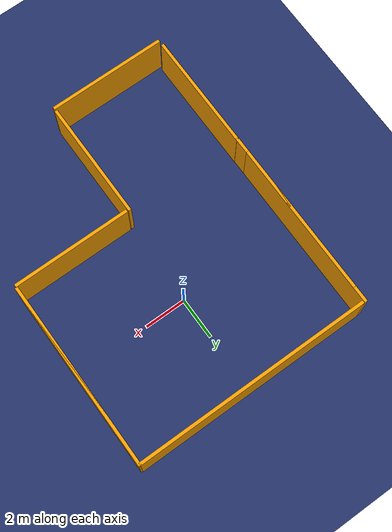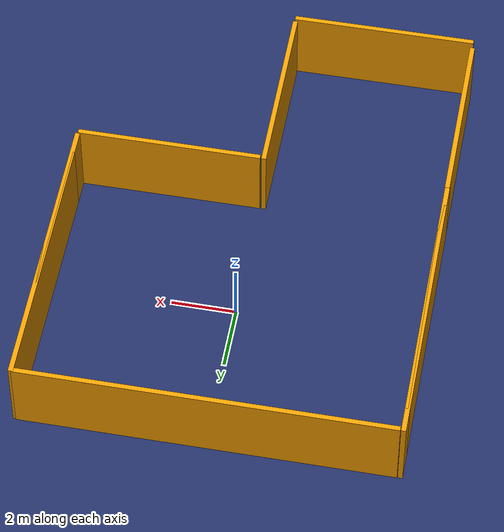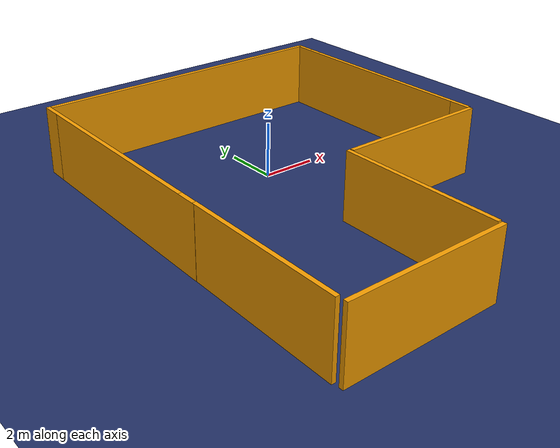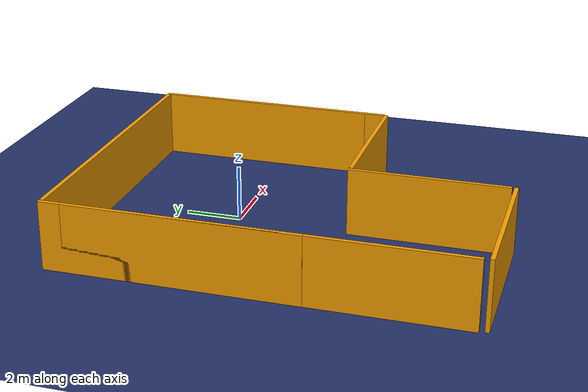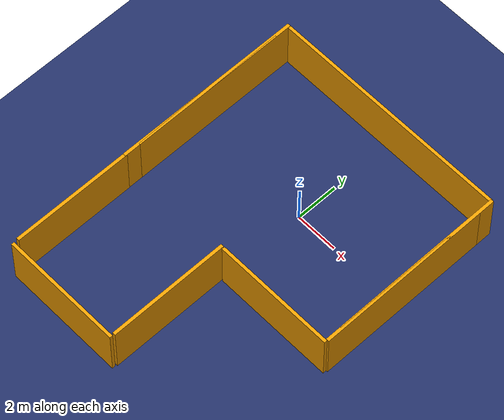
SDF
<sdf version="1.9">
 <world name="default">
  <physics name="1ms" type="ode">
   <max_step_size>0.003</max_step_size>
   <real_time_update_rate>1000.0</real_time_update_rate>
   <real_time_factor>1.0</real_time_factor>
  </physics>
  <plugin name="ignition::gazebo::systems::Physics" filename="ignition-gazebo-physics-system"/>
  <plugin name="ignition::gazebo::systems::UserCommands" filename="ignition-gazebo-user-commands-system"/>
  <plugin name="ignition::gazebo::systems::SceneBroadcaster" filename="ignition-gazebo-scene-broadcaster-system"/>
  <plugin name="ignition::gazebo::systems::Sensors" filename="ignition-gazebo-sensors-system">
   <render_engine>ogre2</render_engine>
  </plugin>
  <plugin name="ignition::gazebo::systems::Contact" filename="libignition-gazebo-contact-system.so"/>
  <gravity>0 0 -9.8</gravity>
  <magnetic_field>6e-06 2.3e-05 -4.2e-05</magnetic_field>
  <atmosphere type="adiabatic"/>
  <scene><ambient>0.4 0.4 0.4 1</ambient><background>0.7 0.7 0.7 1</background><shadows>true</shadows></scene>
  <spherical_coordinates>
   <surface_model>EARTH_WGS84</surface_model>
   <world_frame_orientation>ENU</world_frame_orientation>
   <latitude_deg>-22.9</latitude_deg>
   <longitude_deg>-43.2</longitude_deg>
   <elevation>0</elevation>
   <heading_deg>0</heading_deg>
  </spherical_coordinates>
  <model name="ground_plane">
   <static>true</static>
   <link name="link">
    <collision name="collision">
     <geometry><plane><normal>0 0 1</normal><size>100 100</size></plane></geometry>
    </collision>
    <visual name="visual">
     <geometry><plane><normal>0 0 1</normal><size>100 100</size></plane></geometry>
     <material>
      <ambient>0.133 0.188 0.4 1</ambient>
      <diffuse>0.133 0.188 0.4 1</diffuse>
      <specular>0.133 0.188 0.4 1</specular>
     </material>
    </visual>
    <inertial>
     <mass>1</mass>
     <inertia><ixx>1</ixx><ixy>0</ixy><ixz>0</ixz><iyy>1</iyy><iyz>0</iyz><izz>1</izz></inertia>
    </inertial>
   </link>
  </model>
  <model name="office_env_w2">
   <pose>0 4.95791 1.25 0 -0 0</pose>
   <link name="Wall_10">
    <visual name="Wall_10_Visual_0">
     <geometry><box><size>11.466 0.15 2.5</size></box></geometry>
     <material>
      <ambient>0.961 0.62 0 1</ambient>
      <diffuse>0.961 0.62 0 1</diffuse>
      <specular>0.961 0.62 0 1</specular>
     </material>
     <meta><layer>0</layer></meta>
    </visual>
    <collision name="Wall_10_Collision_0"><geometry><box><size>11.466 0.15 2.5</size></box></geometry></collision>
    <inertial>
     <mass>1</mass>
     <inertia><ixx>1</ixx><ixy>0</ixy><ixz>0</ixz><iyy>1</iyy><iyz>0</iyz><izz>1</izz></inertia>
    </inertial>
   </link>
   <static>true</static>
  </model>
  <model name="office_env_w">
   <pose>5.73367 0.847832 1.25 0 -0 1.57</pose>
   <link name="Wall_10">
    <visual name="Wall_10_Visual_0">
     <geometry><box><size>8.324 0.15 2.5</size></box></geometry>
     <material>
      <ambient>0.961 0.62 0 1</ambient>
      <diffuse>0.961 0.62 0 1</diffuse>
      <specular>0.961 0.62 0 1</specular>
     </material>
     <meta><layer>0</layer></meta>
    </visual>
    <collision name="Wall_10_Collision_0"><geometry><box><size>8.324 0.15 2.5</size></box></geometry></collision>
    <inertial>
     <mass>1</mass>
     <inertia><ixx>1</ixx><ixy>0</ixy><ixz>0</ixz><iyy>1</iyy><iyz>0</iyz><izz>1</izz></inertia>
    </inertial>
   </link>
   <static>true</static>
  </model>
  <model name="office_env_w3">
   <pose>2.8655 -4.162 1.25 0 -0 0</pose>
   <link name="Wall_10">
    <visual name="Wall_10_Visual_0">
     <geometry><box><size>5.733 0.15 2.5</size></box></geometry>
     <material>
      <ambient>0.961 0.62 0 1</ambient>
      <diffuse>0.961 0.62 0 1</diffuse>
      <specular>0.961 0.62 0 1</specular>
     </material>
     <meta><layer>0</layer></meta>
    </visual>
    <collision name="Wall_10_Collision_0"><geometry><box><size>5.733 0.15 2.5</size></box></geometry></collision>
    <inertial>
     <mass>1</mass>
     <inertia><ixx>1</ixx><ixy>0</ixy><ixz>0</ixz><iyy>1</iyy><iyz>0</iyz><izz>1</izz></inertia>
    </inertial>
   </link>
   <static>true</static>
  </model>
  <model name="office_env_w3_clone">
   <pose>-0.116895 -6.96099 1.25 0 -0 1.57</pose>
   <link name="Wall_10">
    <visual name="Wall_10_Visual_0">
     <geometry><box><size>5.733 0.15 2.5</size></box></geometry>
     <material>
      <ambient>0.961 0.62 0 1</ambient>
      <diffuse>0.961 0.62 0 1</diffuse>
      <specular>0.961 0.62 0 1</specular>
     </material>
     <meta><layer>0</layer></meta>
    </visual>
    <collision name="Wall_10_Collision_0"><geometry><box><size>5.733 0.15 2.5</size></box></geometry></collision>
    <inertial>
     <mass>1</mass>
     <inertia><ixx>1</ixx><ixy>0</ixy><ixz>0</ixz><iyy>1</iyy><iyz>0</iyz><izz>1</izz></inertia>
    </inertial>
   </link>
   <static>true</static>
  </model>
  <model name="office_env_w_clone">
   <pose>-5.82885 0.866541 1.25 0 -0 1.57</pose>
   <link name="Wall_10">
    <visual name="Wall_10_Visual_0">
     <geometry><box><size>8.324 0.15 2.5</size></box></geometry>
     <material>
      <ambient>0.961 0.62 0 1</ambient>
      <diffuse>0.961 0.62 0 1</diffuse>
      <specular>0.961 0.62 0 1</specular>
     </material>
     <meta><layer>0</layer></meta>
    </visual>
    <collision name="Wall_10_Collision_0"><geometry><box><size>8.324 0.15 2.5</size></box></geometry></collision>
    <inertial>
     <mass>1</mass>
     <inertia><ixx>1</ixx><ixy>0</ixy><ixz>0</ixz><iyy>1</iyy><iyz>0</iyz><izz>1</izz></inertia>
    </inertial>
   </link>
   <static>true</static>
  </model>
  <model name="office_env_w3_clone_clone">
   <pose>-5.82695 -6.85682 1.25 0 -0 1.57</pose>
   <link name="Wall_10">
    <visual name="Wall_10_Visual_0">
     <geometry><box><size>5.733 0.15 2.5</size></box></geometry>
     <material>
      <ambient>0.961 0.62 0 1</ambient>
      <diffuse>0.961 0.62 0 1</diffuse>
      <specular>0.961 0.62 0 1</specular>
     </material>
     <meta><layer>0</layer></meta>
    </visual>
    <collision name="Wall_10_Collision_0"><geometry><box><size>5.733 0.15 2.5</size></box></geometry></collision>
    <inertial>
     <mass>1</mass>
     <inertia><ixx>1</ixx><ixy>0</ixy><ixz>0</ixz><iyy>1</iyy><iyz>0</iyz><izz>1</izz></inertia>
    </inertial>
   </link>
   <static>true</static>
  </model>
  <model name="office_env_w3_clone_0">
   <pose>-2.96341 -9.9742 1.25 0 -0 0</pose>
   <link name="Wall_10">
    <visual name="Wall_10_Visual_0">
     <geometry><box><size>5.733 0.15 2.5</size></box></geometry>
     <material>
      <ambient>0.961 0.62 0 1</ambient>
      <diffuse>0.961 0.62 0 1</diffuse>
      <specular>0.961 0.62 0 1</specular>
     </material>
     <meta><layer>0</layer></meta>
    </visual>
    <collision name="Wall_10_Collision_0"><geometry><box><size>5.733 0.15 2.5</size></box></geometry></collision>
    <inertial>
     <mass>1</mass>
     <inertia><ixx>1</ixx><ixy>0</ixy><ixz>0</ixz><iyy>1</iyy><iyz>0</iyz><izz>1</izz></inertia>
    </inertial>
   </link>
   <static>true</static>
  </model>
  <model name="office_env_w_1">
   <pose>5.73307 0.08924 1.25 0 -0 1.57</pose>
   <link name="Wall_10">
    <visual name="Wall_10_Visual_0">
     <geometry><box><size>8.324 0.15 2.5</size></box></geometry>
     <material>
      <ambient>0.961 0.62 0 1</ambient>
      <diffuse>0.961 0.62 0 1</diffuse>
      <specular>0.961 0.62 0 1</specular>
     </material>
     <meta><layer>0</layer></meta>
    </visual>
    <collision name="Wall_10_Collision_0"><geometry><box><size>8.324 0.15 2.5</size></box></geometry></collision>
    <inertial>
     <mass>1</mass>
     <inertia><ixx>1</ixx><ixy>0</ixy><ixz>0</ixz><iyy>1</iyy><iyz>0</iyz><izz>1</izz></inertia>
    </inertial>
   </link>
   <static>true</static>
  </model>
  <model name="office_env_w_clone_1">
   <pose>-5.82948 0.079903 1.25 0 -0 1.57</pose>
   <link name="Wall_10">
    <visual name="Wall_10_Visual_0">
     <geometry><box><size>8.324 0.15 2.5</size></box></geometry>
     <material>
      <ambient>0.961 0.62 0 1</ambient>
      <diffuse>0.961 0.62 0 1</diffuse>
      <specular>0.961 0.62 0 1</specular>
     </material>
     <meta><layer>0</layer></meta>
    </visual>
    <collision name="Wall_10_Collision_0"><geometry><box><size>8.324 0.15 2.5</size></box></geometry></collision>
    <inertial>
     <mass>1</mass>
     <inertia><ixx>1</ixx><ixy>0</ixy><ixz>0</ixz><iyy>1</iyy><iyz>0</iyz><izz>1</izz></inertia>
    </inertial>
   </link>
   <static>true</static>
  </model>
  <light name="sun" type="directional">
   <pose>0 0 10 0 -0 0</pose>
   <intensity>1</intensity>
   <direction>-0.5 0.5 -1</direction>
   <diffuse>0.8 0.8 0.8 1</diffuse>
   <specular>0.2 0.2 0.2 1</specular>
   <attenuation>
    <range>1000</range>
    <linear>0.01</linear>
    <constant>0.90000000000000002</constant>
    <quadratic>0.001</quadratic>
   </attenuation>
   <spot><inner_angle>0</inner_angle><outer_angle>0</outer_angle><falloff>0</falloff></spot>
  </light>
 </world>
</sdf>
